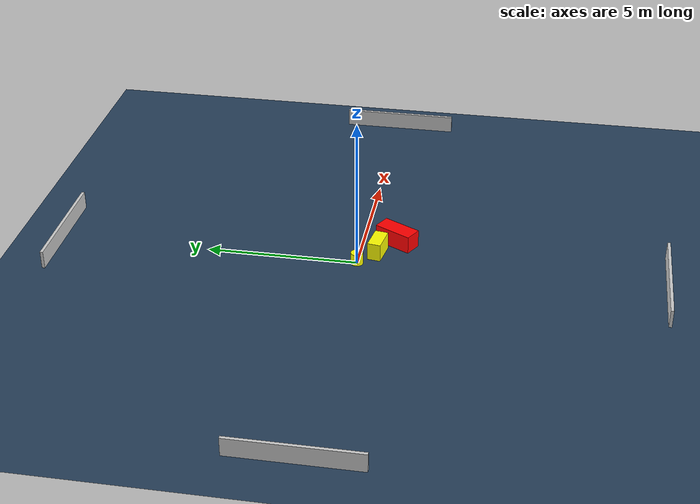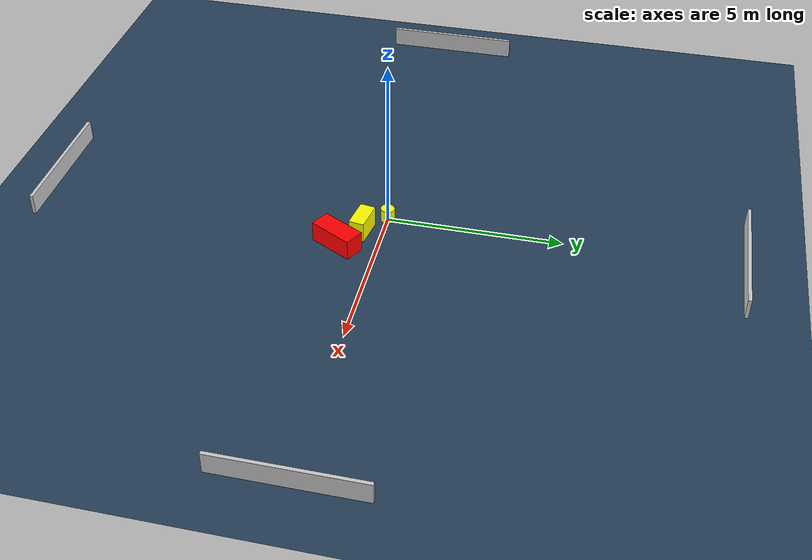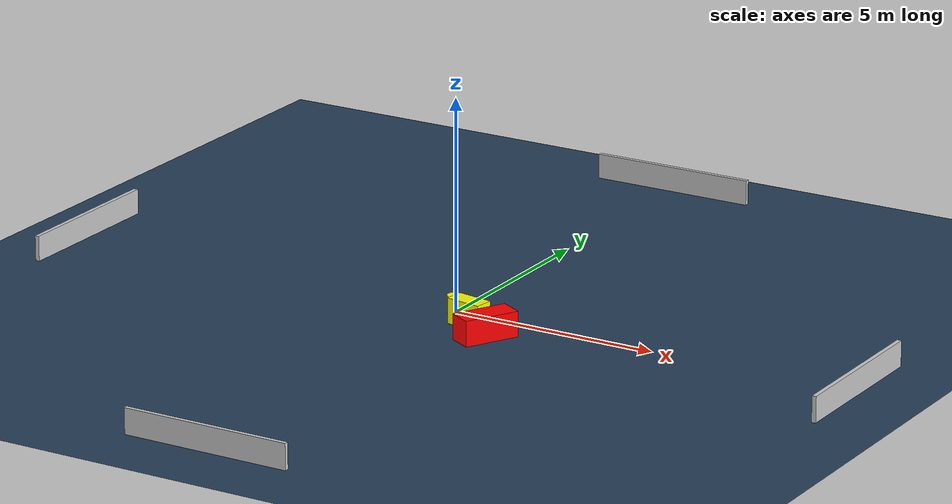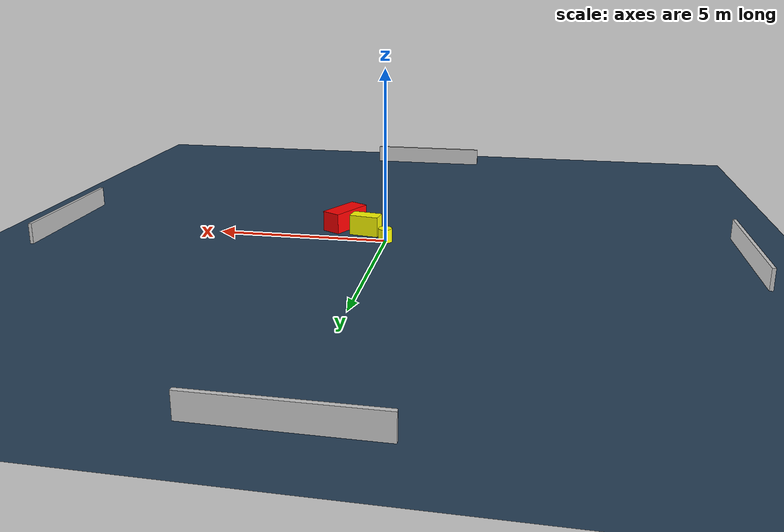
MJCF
<?xml version="1.0" ?>
<mujoco model="generated_environment">
  <option timestep="0.01" integrator="RK4" cone="elliptic"/>
  <default>
    <geom density="1"/>
  </default>
  <asset>
    <texture builtin="gradient" height="3072" name="skybox" rgb1="0.3 0.5 0.7" rgb2="0 0 0" type="skybox" width="512"/>
    <texture builtin="checker" height="300" name="groundplane" rgb1="0.2 0.3 0.4" rgb2="0.1 0.2 0.3" type="2d" width="300"/>
    <material name="groundplane" reflectance="0.2" texrepeat="5 5" texture="groundplane"/>
  </asset>
  <worldbody>
    <light dir="0 0 -1" directional="true" pos="0 0 1.5"/>
    <geom condim="3" friction="0.5 0.005 0.001" material="groundplane" name="floor" pos="0 0 0" size="0 0 0.05" type="plane"/>
    <body name="walls">
      <geom name="wall_1" condim="4" pos="-10.0 0.0 0.3" rgba="0.800000011920929 0.800000011920929 0.800000011920929 1.0" size="0.05 2.0 0.3" type="box"/>
      <geom name="wall_2" condim="4" pos="10.0 0.0 0.3" rgba="0.800000011920929 0.800000011920929 0.800000011920929 1.0" size="0.05 2.0 0.3" type="box"/>
      <geom name="wall_3" condim="4" pos="0.0 -10.0 0.3" rgba="0.800000011920929 0.800000011920929 0.800000011920929 1.0" size="2.0 0.05 0.3" type="box"/>
      <geom name="wall_4" condim="4" pos="0.0 10.0 0.3" rgba="0.800000011920929 0.800000011920929 0.800000011920929 1.0" size="2.0 0.05 0.3" type="box"/>
    </body>
    <body name="robot">
      <joint name="joint_x" type="slide" pos="0 0 0" axis="1 0 0"/>
      <joint name="joint_y" type="slide" pos="0 0 0" axis="0 1 0"/>
      <geom name="robot" type="cylinder" pos="0.0 0.0 0.2" size="0.2 0.2 0.0" mass="5.0" friction="1.0 0.005 0.0001" condim="4" rgba="1.0 1.0 0.0 1.0"/>
    </body>
    <body name="obstacle_1_movable">
      <geom name="obstacle_1_movable" condim="4" pos="0.6880074925709239 -0.5786571789461334 0.3" euler="0 0 171.24449883104134" friction="0.0 0.005 0.001" rgba="1.0 1.0 0.0 1.0" size="0.4345787057028213 0.22028446991064465 0.3" type="box" mass="0.1"/>
      <joint type="free"/>
    </body>
    <body name="obstacle_2_static">
      <geom name="obstacle_2_static" condim="4" pos="1.438674451770926 -1.1153126779871636 0.3" euler="0 0 151.53460897664988" friction="0.0 0.005 0.001" rgba="1.0 0.0 0.0 1.0" size="0.2911396649446124 0.6629606665828043 0.3" type="box"/>
    </body>
  </worldbody>
  <actuator>
    <motor name="actuator_x" joint="joint_x" gear="1" ctrlrange="-1 1"/>
    <motor name="actuator_y" joint="joint_y" gear="1" ctrlrange="-1 1"/>
  </actuator>
</mujoco>
